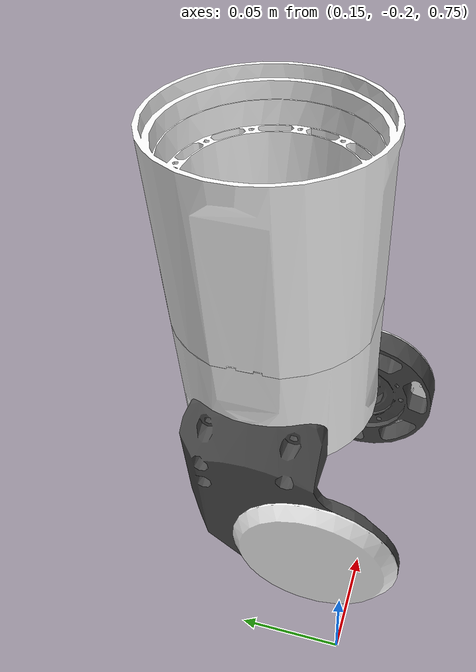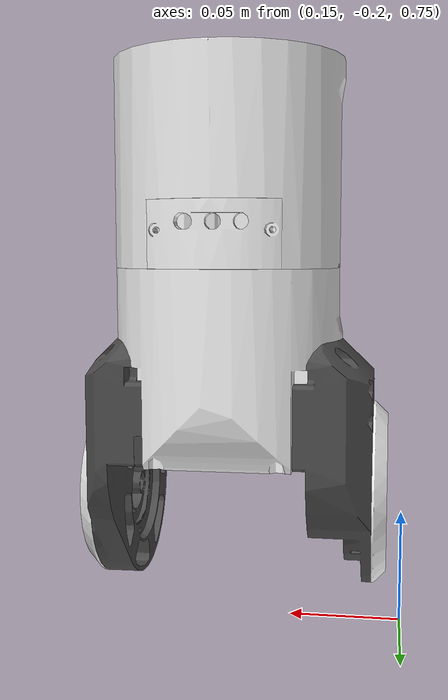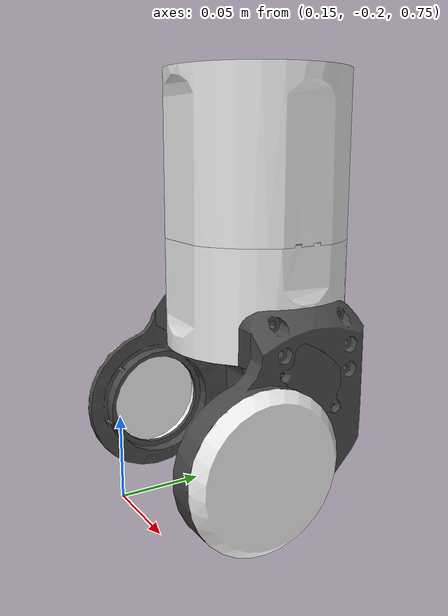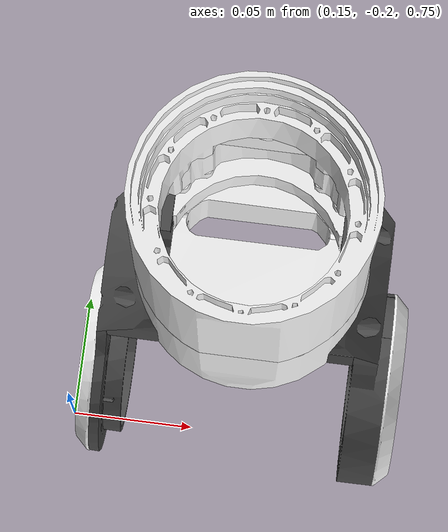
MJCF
<mujoco model="left_arm_3">
  <default>
    <default class="visual">
      <geom group="2" type="mesh" contype="0" conaffinity="0"/>
    </default>
    <default class="collision">
      <geom group="3" type="mesh"/>
    </default>
  </default>
  <asset>
    <material name="247,247,247_54.001" specular="1.0" shininess="0.2" rgba="0.968627 0.968627 0.968627 1.000000"/>
    <material name="247,247,247_55.001" specular="1.0" shininess="0.2" rgba="0.968627 0.968627 0.968627 1.000000"/>
    <material name="247,247,247_56.001" specular="1.0" shininess="0.2" rgba="0.968627 0.968627 0.968627 1.000000"/>
    <material name="247,247,247_57.001" specular="1.0" shininess="0.2" rgba="0.968627 0.968627 0.968627 1.000000"/>
    <material name="247,247,247_58.001" specular="1.0" shininess="0.2" rgba="0.968627 0.968627 0.968627 1.000000"/>
    <material name="254,254,255_55.001" specular="1.0" shininess="0.2" rgba="0.996078 0.996078 1.000000 1.000000"/>
    <material name="69,69,69_9.001" specular="1.0" shininess="0.2" rgba="0.270588 0.270588 0.270588 1.000000"/>
    <material name="75,75,75_64.001" specular="1.0" shininess="0.2" rgba="0.294118 0.294118 0.294118 1.000000"/>
    <material name="75,75,75_65.001" specular="1.0" shininess="0.2" rgba="0.294118 0.294118 0.294118 1.000000"/>
    <material name="75,75,75_66.001" specular="1.0" shininess="0.2" rgba="0.294118 0.294118 0.294118 1.000000"/>
    <mesh file="left_arm_3_0.obj"/>
    <mesh file="left_arm_3_1.obj"/>
    <mesh file="left_arm_3_2.obj"/>
    <mesh file="left_arm_3_3.obj"/>
    <mesh file="left_arm_3_4.obj"/>
    <mesh file="left_arm_3_5.obj"/>
    <mesh file="left_arm_3_6.obj"/>
    <mesh file="left_arm_3_7.obj"/>
    <mesh file="left_arm_3_8.obj"/>
    <mesh file="left_arm_3_9.obj"/>
  </asset>
  <worldbody>
    <body name="left_arm_3">
      <geom mesh="left_arm_3_0" material="69,69,69_9.001" class="visual"/>
      <geom mesh="left_arm_3_1" material="254,254,255_55.001" class="visual"/>
      <geom mesh="left_arm_3_2" material="75,75,75_65.001" class="visual"/>
      <geom mesh="left_arm_3_3" material="75,75,75_66.001" class="visual"/>
      <geom mesh="left_arm_3_4" material="247,247,247_54.001" class="visual"/>
      <geom mesh="left_arm_3_5" material="247,247,247_55.001" class="visual"/>
      <geom mesh="left_arm_3_6" material="75,75,75_64.001" class="visual"/>
      <geom mesh="left_arm_3_7" material="247,247,247_56.001" class="visual"/>
      <geom mesh="left_arm_3_8" material="247,247,247_58.001" class="visual"/>
      <geom mesh="left_arm_3_9" material="247,247,247_57.001" class="visual"/>
      <geom mesh="left_arm_3_0" class="collision"/>
      <geom mesh="left_arm_3_1" class="collision"/>
      <geom mesh="left_arm_3_2" class="collision"/>
      <geom mesh="left_arm_3_3" class="collision"/>
      <geom mesh="left_arm_3_4" class="collision"/>
      <geom mesh="left_arm_3_5" class="collision"/>
      <geom mesh="left_arm_3_6" class="collision"/>
      <geom mesh="left_arm_3_7" class="collision"/>
      <geom mesh="left_arm_3_8" class="collision"/>
      <geom mesh="left_arm_3_9" class="collision"/>
    </body>
  </worldbody>
</mujoco>
